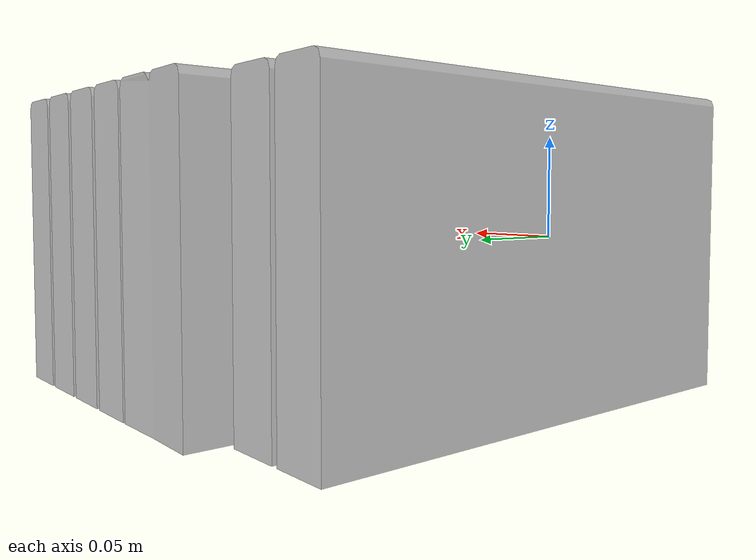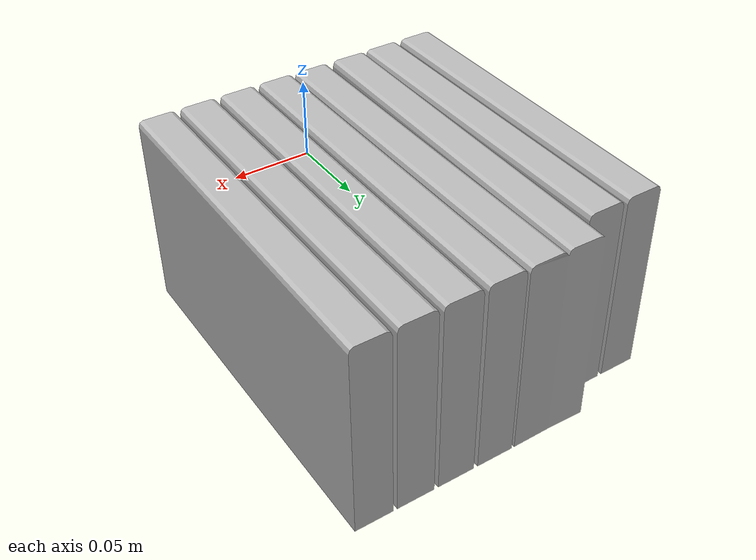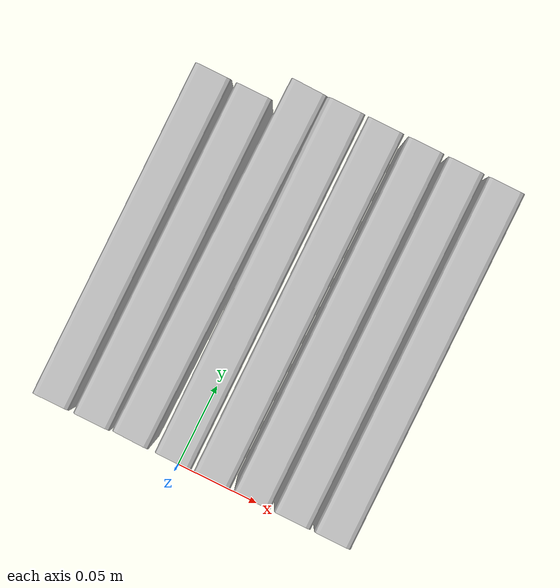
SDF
<?xml version="1.0" ?>
<sdf version="1.4">
  <model name="shelf1_book1_v3">
    <link name="body">
      <pose>0 0 0 0 0 0</pose>
      <inertial>
        <pose>   0.009768   0.111937   0.000419 0 0 0</pose>
        <mass>0.5</mass>
        <inertia>
          <ixx>0.01</ixx>
          <ixy>0</ixy>
          <ixz>0</ixz>
          <iyy>0.01</iyy>
          <iyz>0</iyz>
          <izz>0.01</izz>
        </inertia>
      </inertial>
      <collision name="collision">
        <geometry>
          <mesh>
            <uri>model://bookshelf/shelf1_items/book1_v3/book1_v3.dae</uri>
          </mesh>
        </geometry>
      </collision>
      <visual name="visual">
        <geometry>
          <mesh>
            <uri>model://bookshelf/shelf1_items/book1_v3/book1_v3.dae</uri>
          </mesh>
        </geometry>
      </visual>
    </link>
  </model>
</sdf>
